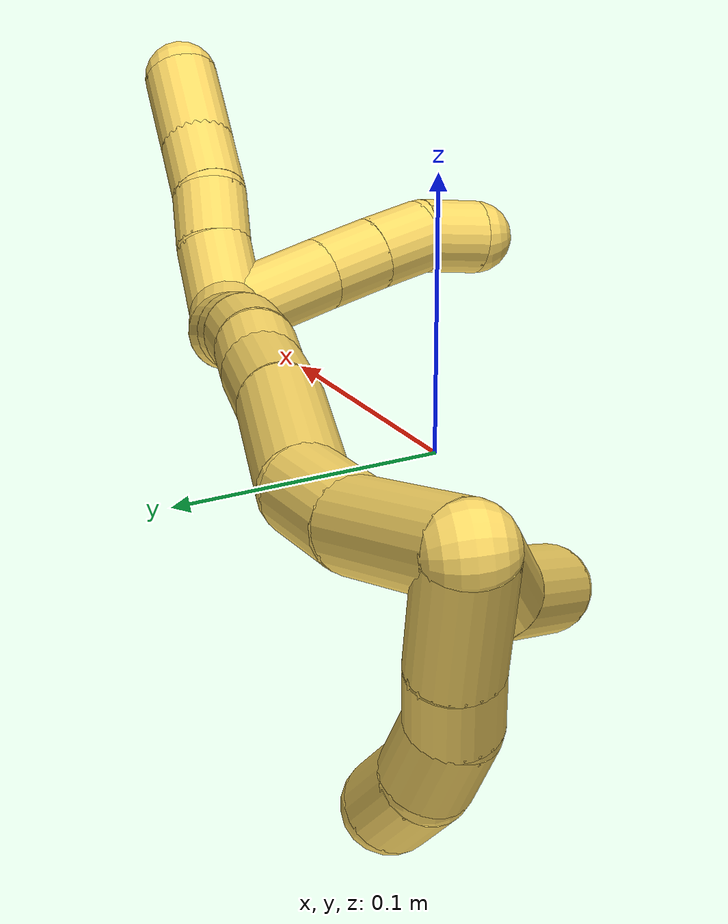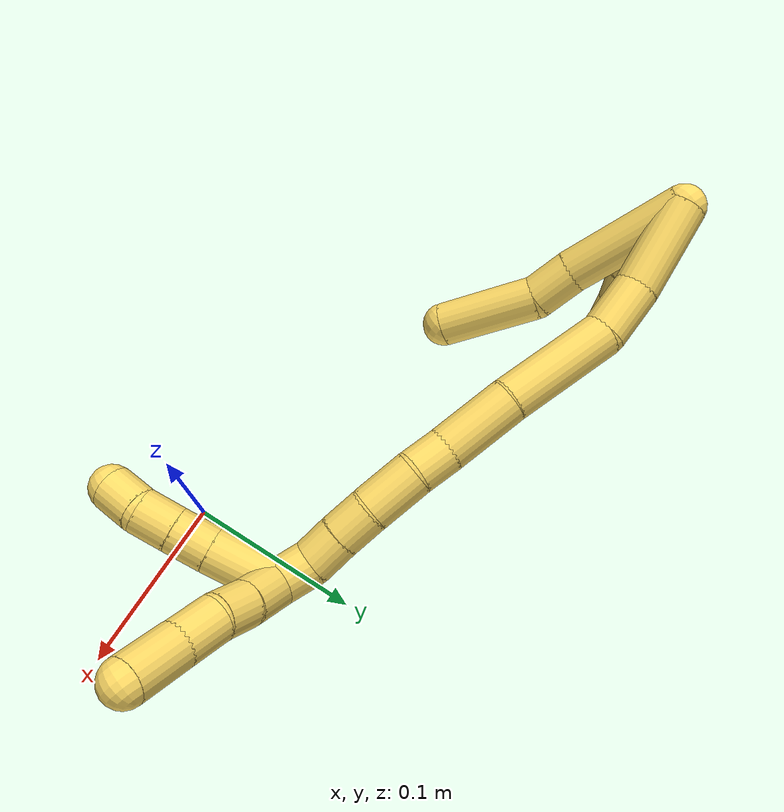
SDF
<sdf version="1.7">
 <world name="default">
  <model name="5">
   <static>0</static>
   <link name="5">
    <collision name="collision-cylinder-e_1_2_8">
     <pose>-0.008777 -0.032275 0.008147 1.32353 -0.257818 -0.201261</pose>
     <geometry><cylinder><radius>0.0125</radius><length>0.06885</length></cylinder></geometry>
     <surface>
      <friction><ode><mu>1.16</mu><mu2>1.16</mu2><slip1>0</slip1><slip2>0</slip2></ode></friction>
      <contact><ode><kp>1e+06</kp><kd>1</kd><max_vel>0</max_vel><min_depth>0.001</min_depth></ode></contact>
     </surface>
    </collision>
    <visual name="visual-cylinder-e_1_2_8">
     <pose>-0.008777 -0.032275 0.008147 1.32353 -0.257818 -0.201261</pose>
     <geometry><cylinder><radius>0.0125</radius><length>0.06885</length></cylinder></geometry>
     <material><ambient>1 0.858824 0.4 1</ambient></material>
    </visual>
    <collision name="collision-cylinder-e_2_8_9">
     <pose>-0.019661 -0.076646 0.017712 1.45412 -0.171268 -0.152444</pose>
     <geometry><cylinder><radius>0.0125</radius><length>0.02472</length></cylinder></geometry>
     <surface>
      <friction><ode><mu>1.16</mu><mu2>1.16</mu2><slip1>0</slip1><slip2>0</slip2></ode></friction>
      <contact><ode><kp>1e+06</kp><kd>1</kd><max_vel>0</max_vel><min_depth>0.001</min_depth></ode></contact>
     </surface>
    </collision>
    <visual name="visual-cylinder-e_2_8_9">
     <pose>-0.019661 -0.076646 0.017712 1.45412 -0.171268 -0.152444</pose>
     <geometry><cylinder><radius>0.0125</radius><length>0.02472</length></cylinder></geometry>
     <material><ambient>1 0.858824 0.4 1</ambient></material>
    </visual>
    <collision name="collision-cylinder-e_3_9_6">
     <pose>-0.025052 -0.113805 0.031666 1.10699 -0.116644 -0.072127</pose>
     <geometry><cylinder><radius>0.0125</radius><length>0.056429</length></cylinder></geometry>
     <surface>
      <friction><ode><mu>1.16</mu><mu2>1.16</mu2><slip1>0</slip1><slip2>0</slip2></ode></friction>
      <contact><ode><kp>1e+06</kp><kd>1</kd><max_vel>0</max_vel><min_depth>0.001</min_depth></ode></contact>
     </surface>
    </collision>
    <visual name="visual-cylinder-e_3_9_6">
     <pose>-0.025052 -0.113805 0.031666 1.10699 -0.116644 -0.072127</pose>
     <geometry><cylinder><radius>0.0125</radius><length>0.056429</length></cylinder></geometry>
     <material><ambient>1 0.858824 0.4 1</ambient></material>
    </visual>
    <collision name="collision-cylinder-e_1_2_10">
     <pose>-0.014483 -0.012114 -0.00096 1.6499 -0.872676 -0.934864</pose>
     <geometry><cylinder><radius>0.0125</radius><length>0.037811</length></cylinder></geometry>
     <surface>
      <friction><ode><mu>1.16</mu><mu2>1.16</mu2><slip1>0</slip1><slip2>0</slip2></ode></friction>
      <contact><ode><kp>1e+06</kp><kd>1</kd><max_vel>0</max_vel><min_depth>0.001</min_depth></ode></contact>
     </surface>
    </collision>
    <visual name="visual-cylinder-e_1_2_10">
     <pose>-0.014483 -0.012114 -0.00096 1.6499 -0.872676 -0.934864</pose>
     <geometry><cylinder><radius>0.0125</radius><length>0.037811</length></cylinder></geometry>
     <material><ambient>1 0.858824 0.4 1</ambient></material>
    </visual>
    <collision name="collision-cylinder-e_2_10_11">
     <pose>-0.036563 -0.030733 -0.001753 1.54508 -0.862565 -0.843194</pose>
     <geometry><cylinder><radius>0.0125</radius><length>0.020008</length></cylinder></geometry>
     <surface>
      <friction><ode><mu>1.16</mu><mu2>1.16</mu2><slip1>0</slip1><slip2>0</slip2></ode></friction>
      <contact><ode><kp>1e+06</kp><kd>1</kd><max_vel>0</max_vel><min_depth>0.001</min_depth></ode></contact>
     </surface>
    </collision>
    <visual name="visual-cylinder-e_2_10_11">
     <pose>-0.036563 -0.030733 -0.001753 1.54508 -0.862565 -0.843194</pose>
     <geometry><cylinder><radius>0.0125</radius><length>0.020008</length></cylinder></geometry>
     <material><ambient>1 0.858824 0.4 1</ambient></material>
    </visual>
    <collision name="collision-cylinder-e_3_11_12">
     <pose>-0.051365 -0.043809 -0.004703 2.01385 -0.780672 -1.15367</pose>
     <geometry><cylinder><radius>0.0125</radius><length>0.020472</length></cylinder></geometry>
     <surface>
      <friction><ode><mu>1.16</mu><mu2>1.16</mu2><slip1>0</slip1><slip2>0</slip2></ode></friction>
      <contact><ode><kp>1e+06</kp><kd>1</kd><max_vel>0</max_vel><min_depth>0.001</min_depth></ode></contact>
     </surface>
    </collision>
    <visual name="visual-cylinder-e_3_11_12">
     <pose>-0.051365 -0.043809 -0.004703 2.01385 -0.780672 -1.15367</pose>
     <geometry><cylinder><radius>0.0125</radius><length>0.020472</length></cylinder></geometry>
     <material><ambient>1 0.858824 0.4 1</ambient></material>
    </visual>
    <collision name="collision-cylinder-e_4_12_5">
     <pose>-0.063195 -0.059564 -0.011291 1.93201 -0.440277 -0.626178</pose>
     <geometry><cylinder><radius>0.0125</radius><length>0.02171</length></cylinder></geometry>
     <surface>
      <friction><ode><mu>1.16</mu><mu2>1.16</mu2><slip1>0</slip1><slip2>0</slip2></ode></friction>
      <contact><ode><kp>1e+06</kp><kd>1</kd><max_vel>0</max_vel><min_depth>0.001</min_depth></ode></contact>
     </surface>
    </collision>
    <visual name="visual-cylinder-e_4_12_5">
     <pose>-0.063195 -0.059564 -0.011291 1.93201 -0.440277 -0.626178</pose>
     <geometry><cylinder><radius>0.0125</radius><length>0.02171</length></cylinder></geometry>
     <material><ambient>1 0.858824 0.4 1</ambient></material>
    </visual>
    <collision name="collision-cylinder-e_1_2_13">
     <pose>0.002112 -0.024137 -0.009073 1.93036 0.081728 0.117963</pose>
     <geometry><cylinder><radius>0.0125</radius><length>0.051745</length></cylinder></geometry>
     <surface>
      <friction><ode><mu>1.16</mu><mu2>1.16</mu2><slip1>0</slip1><slip2>0</slip2></ode></friction>
      <contact><ode><kp>1e+06</kp><kd>1</kd><max_vel>0</max_vel><min_depth>0.001</min_depth></ode></contact>
     </surface>
    </collision>
    <visual name="visual-cylinder-e_1_2_13">
     <pose>0.002112 -0.024137 -0.009073 1.93036 0.081728 0.117963</pose>
     <geometry><cylinder><radius>0.0125</radius><length>0.051745</length></cylinder></geometry>
     <material><ambient>1 0.858824 0.4 1</ambient></material>
    </visual>
    <collision name="collision-cylinder-e_2_13_14">
     <pose>0.008036 -0.063067 -0.022203 1.83845 0.24357 0.318234</pose>
     <geometry><cylinder><radius>0.0125</radius><length>0.031612</length></cylinder></geometry>
     <surface>
      <friction><ode><mu>1.16</mu><mu2>1.16</mu2><slip1>0</slip1><slip2>0</slip2></ode></friction>
      <contact><ode><kp>1e+06</kp><kd>1</kd><max_vel>0</max_vel><min_depth>0.001</min_depth></ode></contact>
     </surface>
    </collision>
    <visual name="visual-cylinder-e_2_13_14">
     <pose>0.008036 -0.063067 -0.022203 1.83845 0.24357 0.318234</pose>
     <geometry><cylinder><radius>0.0125</radius><length>0.031612</length></cylinder></geometry>
     <material><ambient>1 0.858824 0.4 1</ambient></material>
    </visual>
    <collision name="collision-cylinder-e_3_14_15">
     <pose>0.021214 -0.10795 -0.024996 1.52882 0.301527 0.289304</pose>
     <geometry><cylinder><radius>0.0125</radius><length>0.063078</length></cylinder></geometry>
     <surface>
      <friction><ode><mu>1.16</mu><mu2>1.16</mu2><slip1>0</slip1><slip2>0</slip2></ode></friction>
      <contact><ode><kp>1e+06</kp><kd>1</kd><max_vel>0</max_vel><min_depth>0.001</min_depth></ode></contact>
     </surface>
    </collision>
    <visual name="visual-cylinder-e_3_14_15">
     <pose>0.021214 -0.10795 -0.024996 1.52882 0.301527 0.289304</pose>
     <geometry><cylinder><radius>0.0125</radius><length>0.063078</length></cylinder></geometry>
     <material><ambient>1 0.858824 0.4 1</ambient></material>
    </visual>
    <collision name="collision-cylinder-e_4_15_16">
     <pose>0.034653 -0.158533 -0.023622 1.5654 0.196164 0.195116</pose>
     <geometry><cylinder><radius>0.0125</radius><length>0.041789</length></cylinder></geometry>
     <surface>
      <friction><ode><mu>1.16</mu><mu2>1.16</mu2><slip1>0</slip1><slip2>0</slip2></ode></friction>
      <contact><ode><kp>1e+06</kp><kd>1</kd><max_vel>0</max_vel><min_depth>0.001</min_depth></ode></contact>
     </surface>
    </collision>
    <visual name="visual-cylinder-e_4_15_16">
     <pose>0.034653 -0.158533 -0.023622 1.5654 0.196164 0.195116</pose>
     <geometry><cylinder><radius>0.0125</radius><length>0.041789</length></cylinder></geometry>
     <material><ambient>1 0.858824 0.4 1</ambient></material>
    </visual>
    <collision name="collision-cylinder-e_5_16_17">
     <pose>0.042091 -0.188693 -0.023317 1.55069 0.334928 0.328382</pose>
     <geometry><cylinder><radius>0.0125</radius><length>0.020476</length></cylinder></geometry>
     <surface>
      <friction><ode><mu>1.16</mu><mu2>1.16</mu2><slip1>0</slip1><slip2>0</slip2></ode></friction>
      <contact><ode><kp>1e+06</kp><kd>1</kd><max_vel>0</max_vel><min_depth>0.001</min_depth></ode></contact>
     </surface>
    </collision>
    <visual name="visual-cylinder-e_5_16_17">
     <pose>0.042091 -0.188693 -0.023317 1.55069 0.334928 0.328382</pose>
     <geometry><cylinder><radius>0.0125</radius><length>0.020476</length></cylinder></geometry>
     <material><ambient>1 0.858824 0.4 1</ambient></material>
    </visual>
    <collision name="collision-cylinder-e_6_17_18">
     <pose>0.047696 -0.213001 -0.023309 1.58351 0.151764 0.153698</pose>
     <geometry><cylinder><radius>0.0125</radius><length>0.029623</length></cylinder></geometry>
     <surface>
      <friction><ode><mu>1.16</mu><mu2>1.16</mu2><slip1>0</slip1><slip2>0</slip2></ode></friction>
      <contact><ode><kp>1e+06</kp><kd>1</kd><max_vel>0</max_vel><min_depth>0.001</min_depth></ode></contact>
     </surface>
    </collision>
    <visual name="visual-cylinder-e_6_17_18">
     <pose>0.047696 -0.213001 -0.023309 1.58351 0.151764 0.153698</pose>
     <geometry><cylinder><radius>0.0125</radius><length>0.029623</length></cylinder></geometry>
     <material><ambient>1 0.858824 0.4 1</ambient></material>
    </visual>
    <collision name="collision-cylinder-e_7_18_19">
     <pose>0.050178 -0.237895 -0.023694 1.5902 0.023708 0.024172</pose>
     <geometry><cylinder><radius>0.0125</radius><length>0.020518</length></cylinder></geometry>
     <surface>
      <friction><ode><mu>1.16</mu><mu2>1.16</mu2><slip1>0</slip1><slip2>0</slip2></ode></friction>
      <contact><ode><kp>1e+06</kp><kd>1</kd><max_vel>0</max_vel><min_depth>0.001</min_depth></ode></contact>
     </surface>
    </collision>
    <visual name="visual-cylinder-e_7_18_19">
     <pose>0.050178 -0.237895 -0.023694 1.5902 0.023708 0.024172</pose>
     <geometry><cylinder><radius>0.0125</radius><length>0.020518</length></cylinder></geometry>
     <material><ambient>1 0.858824 0.4 1</ambient></material>
    </visual>
    <collision name="collision-cylinder-e_8_19_20">
     <pose>0.050447 -0.258269 -0.024518 1.63248 0.002567 0.002731</pose>
     <geometry><cylinder><radius>0.0125</radius><length>0.020278</length></cylinder></geometry>
     <surface>
      <friction><ode><mu>1.16</mu><mu2>1.16</mu2><slip1>0</slip1><slip2>0</slip2></ode></friction>
      <contact><ode><kp>1e+06</kp><kd>1</kd><max_vel>0</max_vel><min_depth>0.001</min_depth></ode></contact>
     </surface>
    </collision>
    <visual name="visual-cylinder-e_8_19_20">
     <pose>0.050447 -0.258269 -0.024518 1.63248 0.002567 0.002731</pose>
     <geometry><cylinder><radius>0.0125</radius><length>0.020278</length></cylinder></geometry>
     <material><ambient>1 0.858824 0.4 1</ambient></material>
    </visual>
    <collision name="collision-cylinder-e_9_20_1">
     <pose>0.053218 -0.278385 -0.023901 1.44713 0.266025 0.235309</pose>
     <geometry><cylinder><radius>0.0125</radius><length>0.020881</length></cylinder></geometry>
     <surface>
      <friction><ode><mu>1.16</mu><mu2>1.16</mu2><slip1>0</slip1><slip2>0</slip2></ode></friction>
      <contact><ode><kp>1e+06</kp><kd>1</kd><max_vel>0</max_vel><min_depth>0.001</min_depth></ode></contact>
     </surface>
    </collision>
    <visual name="visual-cylinder-e_9_20_1">
     <pose>0.053218 -0.278385 -0.023901 1.44713 0.266025 0.235309</pose>
     <geometry><cylinder><radius>0.0125</radius><length>0.020881</length></cylinder></geometry>
     <material><ambient>1 0.858824 0.4 1</ambient></material>
    </visual>
    <collision name="collision-cylinder-e_1_1_21">
     <pose>0.060612 -0.295568 -0.005731 0.401482 0.247622 0.050635</pose>
     <geometry><cylinder><radius>0.0125</radius><length>0.037936</length></cylinder></geometry>
     <surface>
      <friction><ode><mu>1.16</mu><mu2>1.16</mu2><slip1>0</slip1><slip2>0</slip2></ode></friction>
      <contact><ode><kp>1e+06</kp><kd>1</kd><max_vel>0</max_vel><min_depth>0.001</min_depth></ode></contact>
     </surface>
    </collision>
    <visual name="visual-cylinder-e_1_1_21">
     <pose>0.060612 -0.295568 -0.005731 0.401482 0.247622 0.050635</pose>
     <geometry><cylinder><radius>0.0125</radius><length>0.037936</length></cylinder></geometry>
     <material><ambient>1 0.858824 0.4 1</ambient></material>
    </visual>
    <collision name="collision-cylinder-e_2_21_22">
     <pose>0.067784 -0.306428 0.020814 0.364918 0.240328 0.04455</pose>
     <geometry><cylinder><radius>0.0125</radius><length>0.021199</length></cylinder></geometry>
     <surface>
      <friction><ode><mu>1.16</mu><mu2>1.16</mu2><slip1>0</slip1><slip2>0</slip2></ode></friction>
      <contact><ode><kp>1e+06</kp><kd>1</kd><max_vel>0</max_vel><min_depth>0.001</min_depth></ode></contact>
     </surface>
    </collision>
    <visual name="visual-cylinder-e_2_21_22">
     <pose>0.067784 -0.306428 0.020814 0.364918 0.240328 0.04455</pose>
     <geometry><cylinder><radius>0.0125</radius><length>0.021199</length></cylinder></geometry>
     <material><ambient>1 0.858824 0.4 1</ambient></material>
    </visual>
    <collision name="collision-cylinder-e_3_22_23">
     <pose>0.072519 -0.313621 0.039786 0.359748 0.217823 0.039761</pose>
     <geometry><cylinder><radius>0.0125</radius><length>0.020475</length></cylinder></geometry>
     <surface>
      <friction><ode><mu>1.16</mu><mu2>1.16</mu2><slip1>0</slip1><slip2>0</slip2></ode></friction>
      <contact><ode><kp>1e+06</kp><kd>1</kd><max_vel>0</max_vel><min_depth>0.001</min_depth></ode></contact>
     </surface>
    </collision>
    <visual name="visual-cylinder-e_3_22_23">
     <pose>0.072519 -0.313621 0.039786 0.359748 0.217823 0.039761</pose>
     <geometry><cylinder><radius>0.0125</radius><length>0.020475</length></cylinder></geometry>
     <material><ambient>1 0.858824 0.4 1</ambient></material>
    </visual>
    <collision name="collision-cylinder-e_4_23_4">
     <pose>0.073573 -0.31998 0.058864 0.284225 -0.113885 -0.016312</pose>
     <geometry><cylinder><radius>0.0125</radius><length>0.02039</length></cylinder></geometry>
     <surface>
      <friction><ode><mu>1.16</mu><mu2>1.16</mu2><slip1>0</slip1><slip2>0</slip2></ode></friction>
      <contact><ode><kp>1e+06</kp><kd>1</kd><max_vel>0</max_vel><min_depth>0.001</min_depth></ode></contact>
     </surface>
    </collision>
    <visual name="visual-cylinder-e_4_23_4">
     <pose>0.073573 -0.31998 0.058864 0.284225 -0.113885 -0.016312</pose>
     <geometry><cylinder><radius>0.0125</radius><length>0.02039</length></cylinder></geometry>
     <material><ambient>1 0.858824 0.4 1</ambient></material>
    </visual>
    <collision name="collision-cylinder-e_1_1_24">
     <pose>0.06717 -0.294146 -0.023188 1.6625 1.09402 1.17726</pose>
     <geometry><cylinder><radius>0.0125</radius><length>0.025227</length></cylinder></geometry>
     <surface>
      <friction><ode><mu>1.16</mu><mu2>1.16</mu2><slip1>0</slip1><slip2>0</slip2></ode></friction>
      <contact><ode><kp>1e+06</kp><kd>1</kd><max_vel>0</max_vel><min_depth>0.001</min_depth></ode></contact>
     </surface>
    </collision>
    <visual name="visual-cylinder-e_1_1_24">
     <pose>0.06717 -0.294146 -0.023188 1.6625 1.09402 1.17726</pose>
     <geometry><cylinder><radius>0.0125</radius><length>0.025227</length></cylinder></geometry>
     <material><ambient>1 0.858824 0.4 1</ambient></material>
    </visual>
    <collision name="collision-cylinder-e_2_24_25">
     <pose>0.087198 -0.30464 -0.023106 1.44203 1.07511 0.965174</pose>
     <geometry><cylinder><radius>0.0125</radius><length>0.020055</length></cylinder></geometry>
     <surface>
      <friction><ode><mu>1.16</mu><mu2>1.16</mu2><slip1>0</slip1><slip2>0</slip2></ode></friction>
      <contact><ode><kp>1e+06</kp><kd>1</kd><max_vel>0</max_vel><min_depth>0.001</min_depth></ode></contact>
     </surface>
    </collision>
    <visual name="visual-cylinder-e_2_24_25">
     <pose>0.087198 -0.30464 -0.023106 1.44203 1.07511 0.965174</pose>
     <geometry><cylinder><radius>0.0125</radius><length>0.020055</length></cylinder></geometry>
     <material><ambient>1 0.858824 0.4 1</ambient></material>
    </visual>
    <collision name="collision-cylinder-e_3_25_26">
     <pose>0.104809 -0.317261 -0.022895 1.62166 0.838668 0.877159</pose>
     <geometry><cylinder><radius>0.0125</radius><length>0.02364</length></cylinder></geometry>
     <surface>
      <friction><ode><mu>1.16</mu><mu2>1.16</mu2><slip1>0</slip1><slip2>0</slip2></ode></friction>
      <contact><ode><kp>1e+06</kp><kd>1</kd><max_vel>0</max_vel><min_depth>0.001</min_depth></ode></contact>
     </surface>
    </collision>
    <visual name="visual-cylinder-e_3_25_26">
     <pose>0.104809 -0.317261 -0.022895 1.62166 0.838668 0.877159</pose>
     <geometry><cylinder><radius>0.0125</radius><length>0.02364</length></cylinder></geometry>
     <material><ambient>1 0.858824 0.4 1</ambient></material>
    </visual>
    <collision name="collision-cylinder-e_4_26_3">
     <pose>0.126267 -0.334113 -0.024136 1.66419 0.953039 1.03131</pose>
     <geometry><cylinder><radius>0.0125</radius><length>0.031078</length></cylinder></geometry>
     <surface>
      <friction><ode><mu>1.16</mu><mu2>1.16</mu2><slip1>0</slip1><slip2>0</slip2></ode></friction>
      <contact><ode><kp>1e+06</kp><kd>1</kd><max_vel>0</max_vel><min_depth>0.001</min_depth></ode></contact>
     </surface>
    </collision>
    <visual name="visual-cylinder-e_4_26_3">
     <pose>0.126267 -0.334113 -0.024136 1.66419 0.953039 1.03131</pose>
     <geometry><cylinder><radius>0.0125</radius><length>0.031078</length></cylinder></geometry>
     <material><ambient>1 0.858824 0.4 1</ambient></material>
    </visual>
    <collision name="collision-sphere-3">
     <pose>0.138934 -0.343074 -0.024975 0 -0 0</pose>
     <geometry><sphere><radius>0.0125</radius></sphere></geometry>
     <surface>
      <friction><ode><mu>1.16</mu><mu2>1.16</mu2><slip1>0</slip1><slip2>0</slip2></ode></friction>
      <contact><ode><kp>1e+06</kp><kd>1</kd><max_vel>0</max_vel><min_depth>0.001</min_depth></ode></contact>
     </surface>
    </collision>
    <visual name="visual-sphere-3">
     <pose>0.138934 -0.343074 -0.024975 0 -0 0</pose>
     <geometry><sphere><radius>0.0125</radius></sphere></geometry>
     <material><ambient>1 0.858824 0.4 1</ambient></material>
    </visual>
    <collision name="collision-sphere-26">
     <pose>0.113601 -0.325152 -0.023297 0 -0 0</pose>
     <geometry><sphere><radius>0.0125</radius></sphere></geometry>
     <surface>
      <friction><ode><mu>1.16</mu><mu2>1.16</mu2><slip1>0</slip1><slip2>0</slip2></ode></friction>
      <contact><ode><kp>1e+06</kp><kd>1</kd><max_vel>0</max_vel><min_depth>0.001</min_depth></ode></contact>
     </surface>
    </collision>
    <visual name="visual-sphere-26">
     <pose>0.113601 -0.325152 -0.023297 0 -0 0</pose>
     <geometry><sphere><radius>0.0125</radius></sphere></geometry>
     <material><ambient>1 0.858824 0.4 1</ambient></material>
    </visual>
    <collision name="collision-sphere-25">
     <pose>0.096018 -0.30937 -0.022493 0 -0 0</pose>
     <geometry><sphere><radius>0.0125</radius></sphere></geometry>
     <surface>
      <friction><ode><mu>1.16</mu><mu2>1.16</mu2><slip1>0</slip1><slip2>0</slip2></ode></friction>
      <contact><ode><kp>1e+06</kp><kd>1</kd><max_vel>0</max_vel><min_depth>0.001</min_depth></ode></contact>
     </surface>
    </collision>
    <visual name="visual-sphere-25">
     <pose>0.096018 -0.30937 -0.022493 0 -0 0</pose>
     <geometry><sphere><radius>0.0125</radius></sphere></geometry>
     <material><ambient>1 0.858824 0.4 1</ambient></material>
    </visual>
    <collision name="collision-sphere-24">
     <pose>0.078377 -0.29991 -0.023718 0 -0 0</pose>
     <geometry><sphere><radius>0.0125</radius></sphere></geometry>
     <surface>
      <friction><ode><mu>1.16</mu><mu2>1.16</mu2><slip1>0</slip1><slip2>0</slip2></ode></friction>
      <contact><ode><kp>1e+06</kp><kd>1</kd><max_vel>0</max_vel><min_depth>0.001</min_depth></ode></contact>
     </surface>
    </collision>
    <visual name="visual-sphere-24">
     <pose>0.078377 -0.29991 -0.023718 0 -0 0</pose>
     <geometry><sphere><radius>0.0125</radius></sphere></geometry>
     <material><ambient>1 0.858824 0.4 1</ambient></material>
    </visual>
    <collision name="collision-sphere-4">
     <pose>0.072414 -0.32282 0.068587 0 -0 0</pose>
     <geometry><sphere><radius>0.0125</radius></sphere></geometry>
     <surface>
      <friction><ode><mu>1.16</mu><mu2>1.16</mu2><slip1>0</slip1><slip2>0</slip2></ode></friction>
      <contact><ode><kp>1e+06</kp><kd>1</kd><max_vel>0</max_vel><min_depth>0.001</min_depth></ode></contact>
     </surface>
    </collision>
    <visual name="visual-sphere-4">
     <pose>0.072414 -0.32282 0.068587 0 -0 0</pose>
     <geometry><sphere><radius>0.0125</radius></sphere></geometry>
     <material><ambient>1 0.858824 0.4 1</ambient></material>
    </visual>
    <collision name="collision-sphere-23">
     <pose>0.074732 -0.31714 0.049142 0 -0 0</pose>
     <geometry><sphere><radius>0.0125</radius></sphere></geometry>
     <surface>
      <friction><ode><mu>1.16</mu><mu2>1.16</mu2><slip1>0</slip1><slip2>0</slip2></ode></friction>
      <contact><ode><kp>1e+06</kp><kd>1</kd><max_vel>0</max_vel><min_depth>0.001</min_depth></ode></contact>
     </surface>
    </collision>
    <visual name="visual-sphere-23">
     <pose>0.074732 -0.31714 0.049142 0 -0 0</pose>
     <geometry><sphere><radius>0.0125</radius></sphere></geometry>
     <material><ambient>1 0.858824 0.4 1</ambient></material>
    </visual>
    <collision name="collision-sphere-22">
     <pose>0.070307 -0.310102 0.03043 0 -0 0</pose>
     <geometry><sphere><radius>0.0125</radius></sphere></geometry>
     <surface>
      <friction><ode><mu>1.16</mu><mu2>1.16</mu2><slip1>0</slip1><slip2>0</slip2></ode></friction>
      <contact><ode><kp>1e+06</kp><kd>1</kd><max_vel>0</max_vel><min_depth>0.001</min_depth></ode></contact>
     </surface>
    </collision>
    <visual name="visual-sphere-22">
     <pose>0.070307 -0.310102 0.03043 0 -0 0</pose>
     <geometry><sphere><radius>0.0125</radius></sphere></geometry>
     <material><ambient>1 0.858824 0.4 1</ambient></material>
    </visual>
    <collision name="collision-sphere-21">
     <pose>0.065261 -0.302754 0.011197 0 -0 0</pose>
     <geometry><sphere><radius>0.0125</radius></sphere></geometry>
     <surface>
      <friction><ode><mu>1.16</mu><mu2>1.16</mu2><slip1>0</slip1><slip2>0</slip2></ode></friction>
      <contact><ode><kp>1e+06</kp><kd>1</kd><max_vel>0</max_vel><min_depth>0.001</min_depth></ode></contact>
     </surface>
    </collision>
    <visual name="visual-sphere-21">
     <pose>0.065261 -0.302754 0.011197 0 -0 0</pose>
     <geometry><sphere><radius>0.0125</radius></sphere></geometry>
     <material><ambient>1 0.858824 0.4 1</ambient></material>
    </visual>
    <collision name="collision-sphere-1">
     <pose>0.055963 -0.288382 -0.022658 0 -0 0</pose>
     <geometry><sphere><radius>0.0125</radius></sphere></geometry>
     <surface>
      <friction><ode><mu>1.16</mu><mu2>1.16</mu2><slip1>0</slip1><slip2>0</slip2></ode></friction>
      <contact><ode><kp>1e+06</kp><kd>1</kd><max_vel>0</max_vel><min_depth>0.001</min_depth></ode></contact>
     </surface>
    </collision>
    <visual name="visual-sphere-1">
     <pose>0.055963 -0.288382 -0.022658 0 -0 0</pose>
     <geometry><sphere><radius>0.0125</radius></sphere></geometry>
     <material><ambient>1 0.858824 0.4 1</ambient></material>
    </visual>
    <collision name="collision-sphere-11">
     <pose>-0.044161 -0.037239 -0.001586 0 -0 0</pose>
     <geometry><sphere><radius>0.0125</radius></sphere></geometry>
     <surface>
      <friction><ode><mu>1.16</mu><mu2>1.16</mu2><slip1>0</slip1><slip2>0</slip2></ode></friction>
      <contact><ode><kp>1e+06</kp><kd>1</kd><max_vel>0</max_vel><min_depth>0.001</min_depth></ode></contact>
     </surface>
    </collision>
    <visual name="visual-sphere-11">
     <pose>-0.044161 -0.037239 -0.001586 0 -0 0</pose>
     <geometry><sphere><radius>0.0125</radius></sphere></geometry>
     <material><ambient>1 0.858824 0.4 1</ambient></material>
    </visual>
    <collision name="collision-sphere-10">
     <pose>-0.028965 -0.024228 -0.00192 0 -0 0</pose>
     <geometry><sphere><radius>0.0125</radius></sphere></geometry>
     <surface>
      <friction><ode><mu>1.16</mu><mu2>1.16</mu2><slip1>0</slip1><slip2>0</slip2></ode></friction>
      <contact><ode><kp>1e+06</kp><kd>1</kd><max_vel>0</max_vel><min_depth>0.001</min_depth></ode></contact>
     </surface>
    </collision>
    <visual name="visual-sphere-10">
     <pose>-0.028965 -0.024228 -0.00192 0 -0 0</pose>
     <geometry><sphere><radius>0.0125</radius></sphere></geometry>
     <material><ambient>1 0.858824 0.4 1</ambient></material>
    </visual>
    <collision name="collision-sphere-6">
     <pose>-0.028335 -0.138868 0.044203 0 -0 0</pose>
     <geometry><sphere><radius>0.0125</radius></sphere></geometry>
     <surface>
      <friction><ode><mu>1.16</mu><mu2>1.16</mu2><slip1>0</slip1><slip2>0</slip2></ode></friction>
      <contact><ode><kp>1e+06</kp><kd>1</kd><max_vel>0</max_vel><min_depth>0.001</min_depth></ode></contact>
     </surface>
    </collision>
    <visual name="visual-sphere-6">
     <pose>-0.028335 -0.138868 0.044203 0 -0 0</pose>
     <geometry><sphere><radius>0.0125</radius></sphere></geometry>
     <material><ambient>1 0.858824 0.4 1</ambient></material>
    </visual>
    <collision name="collision-sphere-9">
     <pose>-0.021768 -0.088743 0.01913 0 -0 0</pose>
     <geometry><sphere><radius>0.0125</radius></sphere></geometry>
     <surface>
      <friction><ode><mu>1.16</mu><mu2>1.16</mu2><slip1>0</slip1><slip2>0</slip2></ode></friction>
      <contact><ode><kp>1e+06</kp><kd>1</kd><max_vel>0</max_vel><min_depth>0.001</min_depth></ode></contact>
     </surface>
    </collision>
    <visual name="visual-sphere-9">
     <pose>-0.021768 -0.088743 0.01913 0 -0 0</pose>
     <geometry><sphere><radius>0.0125</radius></sphere></geometry>
     <material><ambient>1 0.858824 0.4 1</ambient></material>
    </visual>
    <collision name="collision-sphere-2">
     <geometry><sphere><radius>0.0125</radius></sphere></geometry>
     <surface>
      <friction><ode><mu>1.16</mu><mu2>1.16</mu2><slip1>0</slip1><slip2>0</slip2></ode></friction>
      <contact><ode><kp>1e+06</kp><kd>1</kd><max_vel>0</max_vel><min_depth>0.001</min_depth></ode></contact>
     </surface>
    </collision>
    <visual name="visual-sphere-2">
     <geometry><sphere><radius>0.0125</radius></sphere></geometry>
     <material><ambient>1 0.858824 0.4 1</ambient></material>
    </visual>
    <collision name="collision-sphere-19">
     <pose>0.050421 -0.24815 -0.023893 0 -0 0</pose>
     <geometry><sphere><radius>0.0125</radius></sphere></geometry>
     <surface>
      <friction><ode><mu>1.16</mu><mu2>1.16</mu2><slip1>0</slip1><slip2>0</slip2></ode></friction>
      <contact><ode><kp>1e+06</kp><kd>1</kd><max_vel>0</max_vel><min_depth>0.001</min_depth></ode></contact>
     </surface>
    </collision>
    <visual name="visual-sphere-19">
     <pose>0.050421 -0.24815 -0.023893 0 -0 0</pose>
     <geometry><sphere><radius>0.0125</radius></sphere></geometry>
     <material><ambient>1 0.858824 0.4 1</ambient></material>
    </visual>
    <collision name="collision-sphere-8">
     <pose>-0.017555 -0.06455 0.016295 0 -0 0</pose>
     <geometry><sphere><radius>0.0125</radius></sphere></geometry>
     <surface>
      <friction><ode><mu>1.16</mu><mu2>1.16</mu2><slip1>0</slip1><slip2>0</slip2></ode></friction>
      <contact><ode><kp>1e+06</kp><kd>1</kd><max_vel>0</max_vel><min_depth>0.001</min_depth></ode></contact>
     </surface>
    </collision>
    <visual name="visual-sphere-8">
     <pose>-0.017555 -0.06455 0.016295 0 -0 0</pose>
     <geometry><sphere><radius>0.0125</radius></sphere></geometry>
     <material><ambient>1 0.858824 0.4 1</ambient></material>
    </visual>
    <collision name="collision-sphere-12">
     <pose>-0.058568 -0.050378 -0.007821 0 -0 0</pose>
     <geometry><sphere><radius>0.0125</radius></sphere></geometry>
     <surface>
      <friction><ode><mu>1.16</mu><mu2>1.16</mu2><slip1>0</slip1><slip2>0</slip2></ode></friction>
      <contact><ode><kp>1e+06</kp><kd>1</kd><max_vel>0</max_vel><min_depth>0.001</min_depth></ode></contact>
     </surface>
    </collision>
    <visual name="visual-sphere-12">
     <pose>-0.058568 -0.050378 -0.007821 0 -0 0</pose>
     <geometry><sphere><radius>0.0125</radius></sphere></geometry>
     <material><ambient>1 0.858824 0.4 1</ambient></material>
    </visual>
    <collision name="collision-sphere-5">
     <pose>-0.067821 -0.06875 -0.014761 0 -0 0</pose>
     <geometry><sphere><radius>0.0125</radius></sphere></geometry>
     <surface>
      <friction><ode><mu>1.16</mu><mu2>1.16</mu2><slip1>0</slip1><slip2>0</slip2></ode></friction>
      <contact><ode><kp>1e+06</kp><kd>1</kd><max_vel>0</max_vel><min_depth>0.001</min_depth></ode></contact>
     </surface>
    </collision>
    <visual name="visual-sphere-5">
     <pose>-0.067821 -0.06875 -0.014761 0 -0 0</pose>
     <geometry><sphere><radius>0.0125</radius></sphere></geometry>
     <material><ambient>1 0.858824 0.4 1</ambient></material>
    </visual>
    <collision name="collision-sphere-13">
     <pose>0.004224 -0.048274 -0.018147 0 -0 0</pose>
     <geometry><sphere><radius>0.0125</radius></sphere></geometry>
     <surface>
      <friction><ode><mu>1.16</mu><mu2>1.16</mu2><slip1>0</slip1><slip2>0</slip2></ode></friction>
      <contact><ode><kp>1e+06</kp><kd>1</kd><max_vel>0</max_vel><min_depth>0.001</min_depth></ode></contact>
     </surface>
    </collision>
    <visual name="visual-sphere-13">
     <pose>0.004224 -0.048274 -0.018147 0 -0 0</pose>
     <geometry><sphere><radius>0.0125</radius></sphere></geometry>
     <material><ambient>1 0.858824 0.4 1</ambient></material>
    </visual>
    <collision name="collision-sphere-14">
     <pose>0.011848 -0.07786 -0.02626 0 -0 0</pose>
     <geometry><sphere><radius>0.0125</radius></sphere></geometry>
     <surface>
      <friction><ode><mu>1.16</mu><mu2>1.16</mu2><slip1>0</slip1><slip2>0</slip2></ode></friction>
      <contact><ode><kp>1e+06</kp><kd>1</kd><max_vel>0</max_vel><min_depth>0.001</min_depth></ode></contact>
     </surface>
    </collision>
    <visual name="visual-sphere-14">
     <pose>0.011848 -0.07786 -0.02626 0 -0 0</pose>
     <geometry><sphere><radius>0.0125</radius></sphere></geometry>
     <material><ambient>1 0.858824 0.4 1</ambient></material>
    </visual>
    <collision name="collision-sphere-15">
     <pose>0.030581 -0.138039 -0.023733 0 -0 0</pose>
     <geometry><sphere><radius>0.0125</radius></sphere></geometry>
     <surface>
      <friction><ode><mu>1.16</mu><mu2>1.16</mu2><slip1>0</slip1><slip2>0</slip2></ode></friction>
      <contact><ode><kp>1e+06</kp><kd>1</kd><max_vel>0</max_vel><min_depth>0.001</min_depth></ode></contact>
     </surface>
    </collision>
    <visual name="visual-sphere-15">
     <pose>0.030581 -0.138039 -0.023733 0 -0 0</pose>
     <geometry><sphere><radius>0.0125</radius></sphere></geometry>
     <material><ambient>1 0.858824 0.4 1</ambient></material>
    </visual>
    <collision name="collision-sphere-16">
     <pose>0.038726 -0.179026 -0.023512 0 -0 0</pose>
     <geometry><sphere><radius>0.0125</radius></sphere></geometry>
     <surface>
      <friction><ode><mu>1.16</mu><mu2>1.16</mu2><slip1>0</slip1><slip2>0</slip2></ode></friction>
      <contact><ode><kp>1e+06</kp><kd>1</kd><max_vel>0</max_vel><min_depth>0.001</min_depth></ode></contact>
     </surface>
    </collision>
    <visual name="visual-sphere-16">
     <pose>0.038726 -0.179026 -0.023512 0 -0 0</pose>
     <geometry><sphere><radius>0.0125</radius></sphere></geometry>
     <material><ambient>1 0.858824 0.4 1</ambient></material>
    </visual>
    <collision name="collision-sphere-17">
     <pose>0.045456 -0.19836 -0.023123 0 -0 0</pose>
     <geometry><sphere><radius>0.0125</radius></sphere></geometry>
     <surface>
      <friction><ode><mu>1.16</mu><mu2>1.16</mu2><slip1>0</slip1><slip2>0</slip2></ode></friction>
      <contact><ode><kp>1e+06</kp><kd>1</kd><max_vel>0</max_vel><min_depth>0.001</min_depth></ode></contact>
     </surface>
    </collision>
    <visual name="visual-sphere-17">
     <pose>0.045456 -0.19836 -0.023123 0 -0 0</pose>
     <geometry><sphere><radius>0.0125</radius></sphere></geometry>
     <material><ambient>1 0.858824 0.4 1</ambient></material>
    </visual>
    <collision name="collision-sphere-18">
     <pose>0.049935 -0.227641 -0.023495 0 -0 0</pose>
     <geometry><sphere><radius>0.0125</radius></sphere></geometry>
     <surface>
      <friction><ode><mu>1.16</mu><mu2>1.16</mu2><slip1>0</slip1><slip2>0</slip2></ode></friction>
      <contact><ode><kp>1e+06</kp><kd>1</kd><max_vel>0</max_vel><min_depth>0.001</min_depth></ode></contact>
     </surface>
    </collision>
    <visual name="visual-sphere-18">
     <pose>0.049935 -0.227641 -0.023495 0 -0 0</pose>
     <geometry><sphere><radius>0.0125</radius></sphere></geometry>
     <material><ambient>1 0.858824 0.4 1</ambient></material>
    </visual>
    <collision name="collision-sphere-20">
     <pose>0.050473 -0.268389 -0.025143 0 -0 0</pose>
     <geometry><sphere><radius>0.0125</radius></sphere></geometry>
     <surface>
      <friction><ode><mu>1.16</mu><mu2>1.16</mu2><slip1>0</slip1><slip2>0</slip2></ode></friction>
      <contact><ode><kp>1e+06</kp><kd>1</kd><max_vel>0</max_vel><min_depth>0.001</min_depth></ode></contact>
     </surface>
    </collision>
    <visual name="visual-sphere-20">
     <pose>0.050473 -0.268389 -0.025143 0 -0 0</pose>
     <geometry><sphere><radius>0.0125</radius></sphere></geometry>
     <material><ambient>1 0.858824 0.4 1</ambient></material>
    </visual>
    <inertial>
     <pose>0.025264 -0.158202 -0.005485 0 -0 0</pose>
     <mass>0.75</mass>
     <inertia><ixx>0.000129</ixx><ixy>0</ixy><ixz>0</ixz><iyy>-6e-06</iyy><iyz>0</iyz><izz>0.00012</izz></inertia>
    </inertial>
   </link>
   <pose>-0.265639 0.147602 0.098497 1.38178 -1.23908 -0.157108</pose>
  </model>
 </world>
</sdf>
